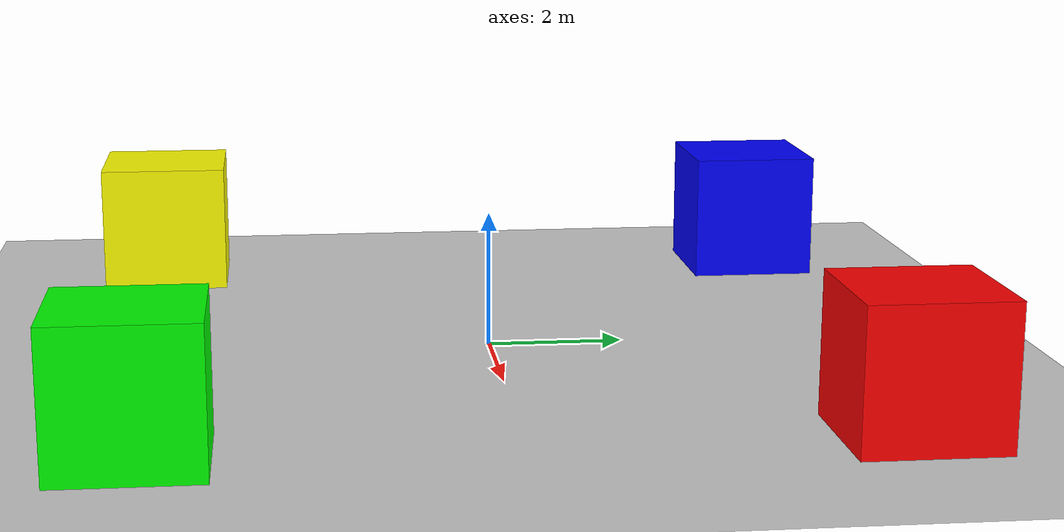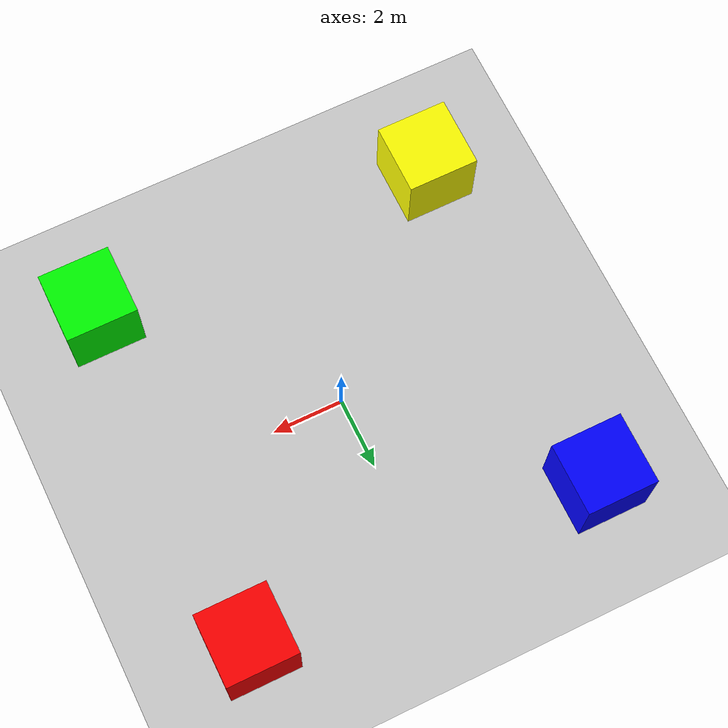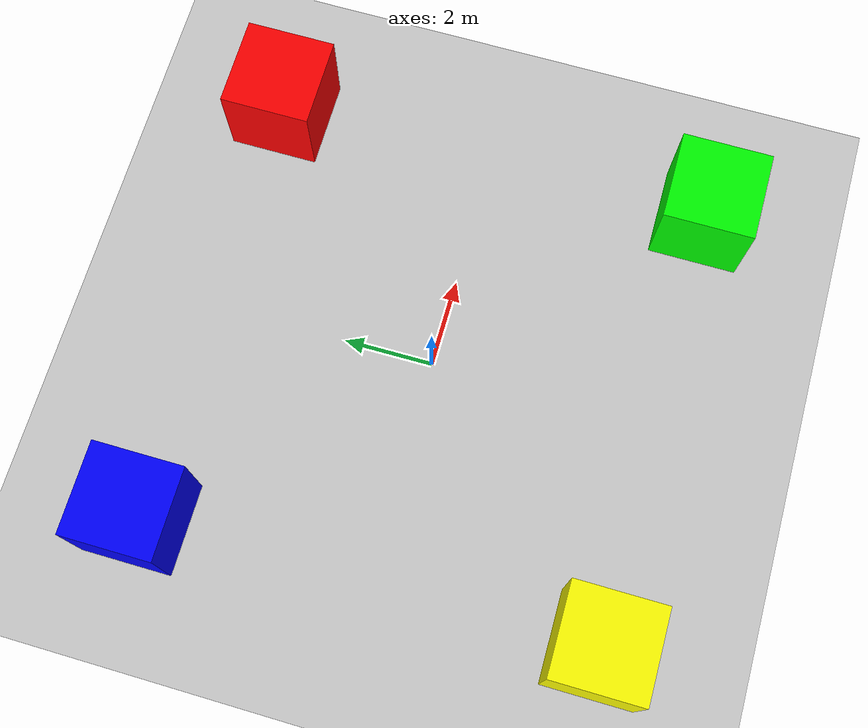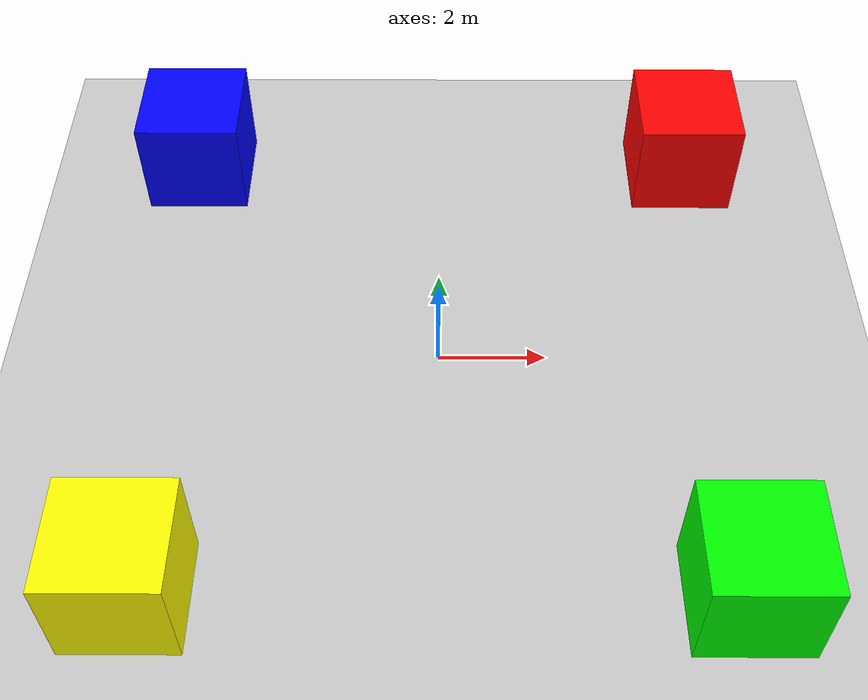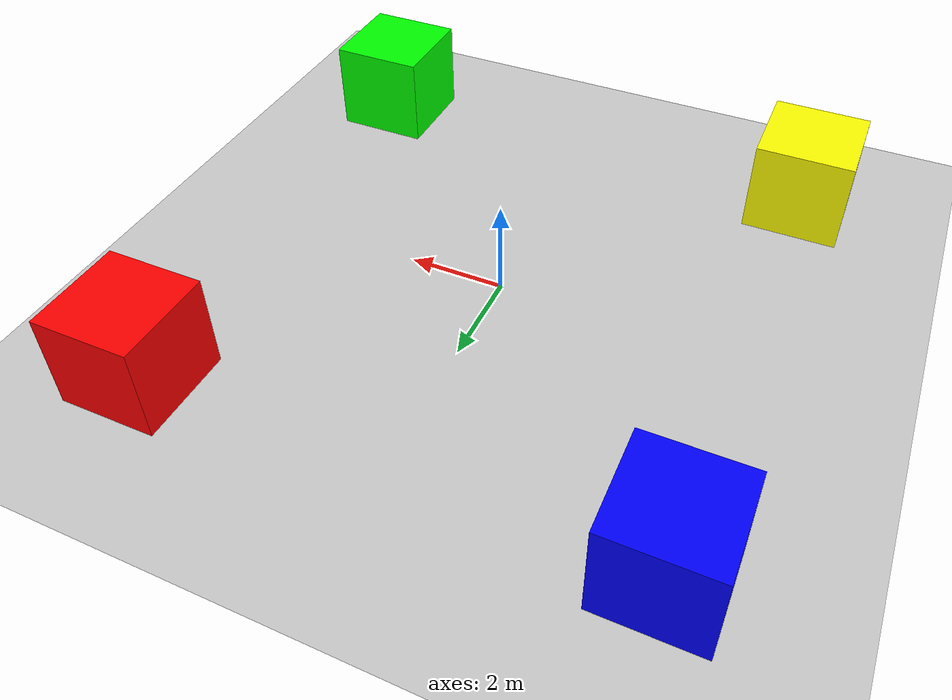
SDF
<?xml version="1.0" ?>
<sdf version="1.7">
  <world name="empty_world">

    <!-- Required Gazebo Sim systems   -->

    <plugin filename="gz-sim-physics-system"
            name="gz::sim::systems::Physics" />

    <plugin filename="gz-sim-user-commands-system"
            name="gz::sim::systems::UserCommands" />

    <plugin filename="gz-sim-scene-broadcaster-system"
            name="gz::sim::systems::SceneBroadcaster" />

    <plugin name="gz::sim::systems::Contact"
            filename="gz-sim-contact-system"/>

    <plugin name="gz::sim::systems::Sensors"
            filename="gz-sim-sensors-system">
      <render_engine>ogre2</render_engine>
    </plugin>

    <!-- Environment                   -->

    <!-- Sun -->
    <light type="directional" name="sun">
      <pose>0 0 10 0 0 0</pose>
      <cast_shadows>true</cast_shadows>
      <diffuse>0.8 0.8 0.8 1</diffuse>
      <specular>0.2 0.2 0.2 1</specular>
      <direction>-0.5 0.1 -0.9</direction>
    </light>

    <!-- Ground -->
    <model name="ground_plane">
      <static>true</static>
      <link name="link">
        <collision name="collision">
          <geometry>
            <plane>
              <normal>0 0 1</normal>
              <size>100 100</size>
            </plane>
          </geometry>
        </collision>
        <visual name="visual">
          <geometry>
            <plane>
              <normal>0 0 1</normal>
              <size>100 100</size>
            </plane>
          </geometry>
          <material>
            <ambient>0.8 0.8 0.8 1</ambient>
            <diffuse>0.8 0.8 0.8 1</diffuse>
          </material>
        </visual>
      </link>
    </model>

    <!-- Corner Blocks                 -->

    <!-- Block 1 (50, 50) -->
    <model name="corner_block_1">
      <static>true</static>
      <pose>5 5 1 0 0 0</pose>
      <link name="link">
        <collision name="collision">
          <geometry>
            <box>
              <size>2 2 2</size>
            </box>
          </geometry>
        </collision>
        <visual name="visual">
          <geometry>
            <box>
              <size>2 2 2</size>
            </box>
          </geometry>
          <material>
            <ambient>1 0 0 1</ambient>
            <diffuse>1 0 0 1</diffuse>
          </material>
        </visual>
      </link>
    </model>

    <!-- Block 2 (50, -50) -->
    <model name="corner_block_2">
      <static>true</static>
      <pose>5 -5 1 0 0 0</pose>
      <link name="link">
        <collision name="collision">
          <geometry>
            <box>
              <size>2 2 2</size>
            </box>
          </geometry>
        </collision>
        <visual name="visual">
          <geometry>
            <box>
              <size>2 2 2</size>
            </box>
          </geometry>
          <material>
            <ambient>0 1 0 1</ambient>
            <diffuse>0 1 0 1</diffuse>
          </material>
        </visual>
      </link>
    </model>

    <!-- Block 3 (-50, 50) -->
    <model name="corner_block_3">
      <static>true</static>
      <pose>-5 5 1 0 0 0</pose>
      <link name="link">
        <collision name="collision">
          <geometry>
            <box>
              <size>2 2 2</size>
            </box>
          </geometry>
        </collision>
        <visual name="visual">
          <geometry>
            <box>
              <size>2 2 2</size>
            </box>
          </geometry>
          <material>
            <ambient>0 0 1 1</ambient>
            <diffuse>0 0 1 1</diffuse>
          </material>
        </visual>
      </link>
    </model>

    <!-- Block 4 (-50, -50) -->
    <model name="corner_block_4">
      <static>true</static>
      <pose>-5 -5 1 0 0 0</pose>
      <link name="link">
        <collision name="collision">
          <geometry>
            <box>
              <size>2 2 2</size>
            </box>
          </geometry>
        </collision>
        <visual name="visual">
          <geometry>
            <box>
              <size>2 2 2</size>
            </box>
          </geometry>
          <material>
            <ambient>1 1 0 1</ambient>
            <diffuse>1 1 0 1</diffuse>
          </material>
        </visual>
      </link>
    </model>

    <!-- Physics configuration         -->

    <physics name="1ms" type="ignored">
      <max_step_size>0.001</max_step_size>
      <real_time_factor>1.0</real_time_factor>
    </physics>

  </world>
</sdf>
